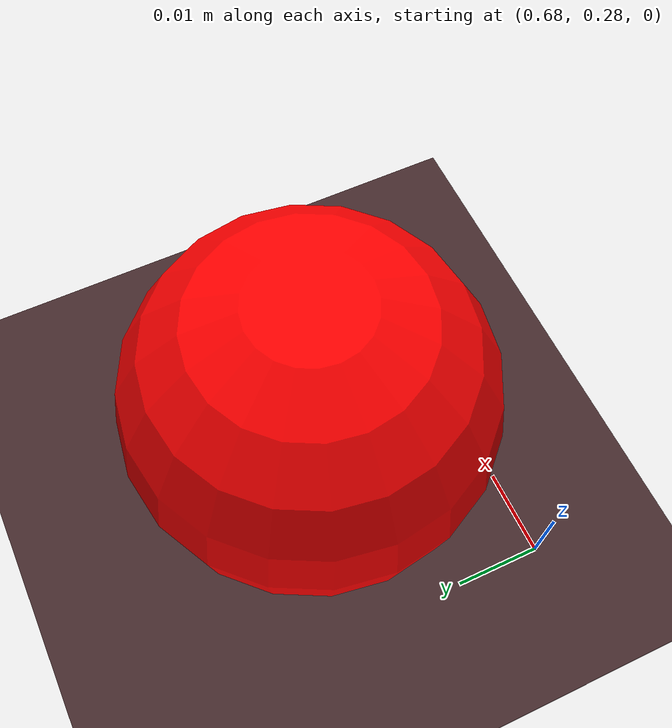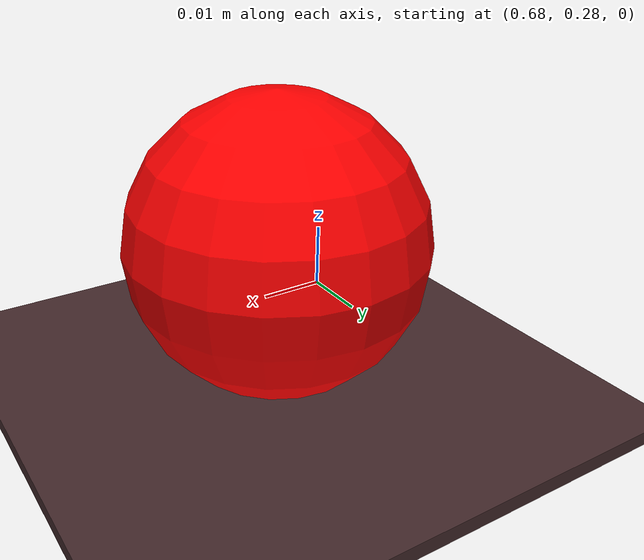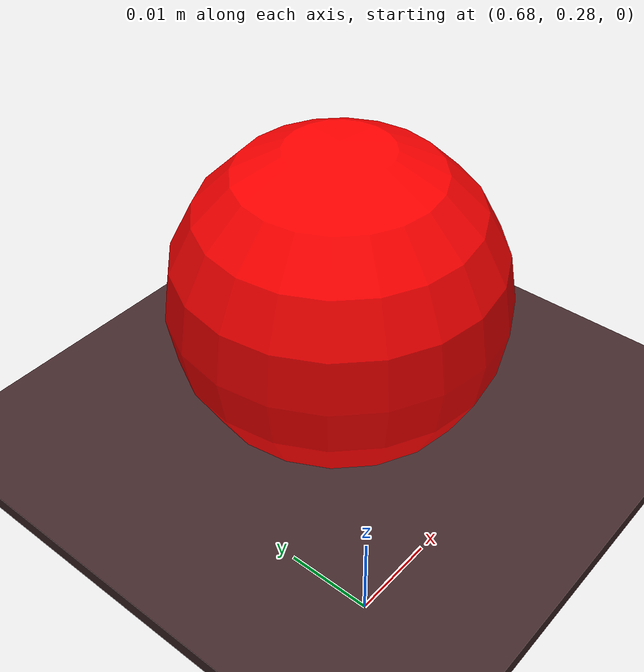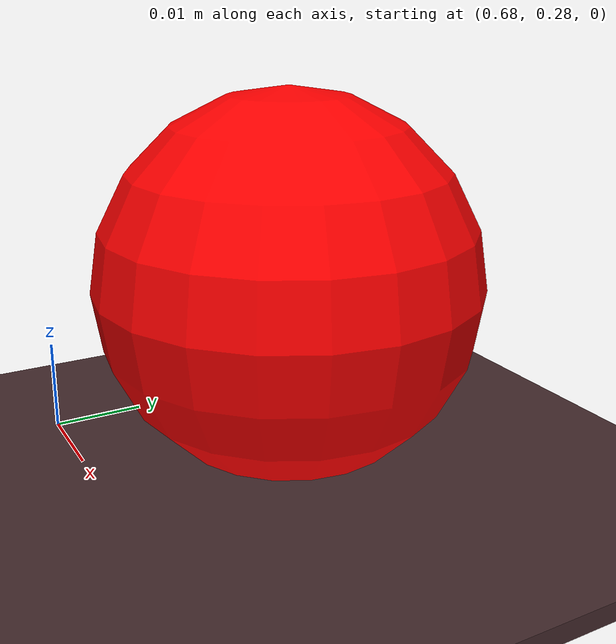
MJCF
<mujoco model="shared_material">
    <asset>
        <material name="floor_mat" specular="0" shininess="0.5" reflectance="0" rgba="0.2 0.2 0.2 1"></material>
        <material name="table_mat" specular="0" shininess="0.5" reflectance="0"
            rgba="0.93 0.93 0.93 1"></material>
        <material name="block_mat" specular="0" shininess="0.5" reflectance="0" rgba="0.2 0.2 0.2 1"></material>
        <material name="puck_mat" specular="0" shininess="0.5" reflectance="0" rgba="0.2 0.2 0.2 1"></material>
        <material name="BeigeMaterial" specular="0" shininess="0" reflectance="0"
            rgba="0.26 0.16 0.16796875 1" emission="0" />
        <material name="object_box" specular="0" reflectance="0" rgba="0.2 0.9 0.2 1"
        ></material>

        <texture type="skybox" builtin="gradient" rgb1="0.3 0.5 0.7" rgb2="0 0 0" width="512"
            height="3072" />

    </asset>
    <visual>
        <headlight diffuse="0.6 0.6 0.6" ambient="0.3 0.3 0.3" specular="0 0 0" />
        <rgba haze="0.15 0.25 0.35 1" />
    </visual>
    <worldbody>
        <light pos="0 0 2" dir="0 0 -1" directional="true" diffuse="1 1 1" />

        <geom name="table" pos="0.4 0 0" size="0.5 0.5 1" type="plane" condim="3"
            material="table_mat"></geom>
        <body name="table" pos=" 0.4 0 0">
            <geom name="platform" size="0.35 0.4 0.001" type="box" condim="3"
                material="BeigeMaterial">
            </geom>
            <site name="target0" pos="0.3 0.3 0.02" size="0.02 0.02 0.02" rgba=" 1 0 0 1"
                type="sphere"></site>
        </body>
    </worldbody>
</mujoco>
